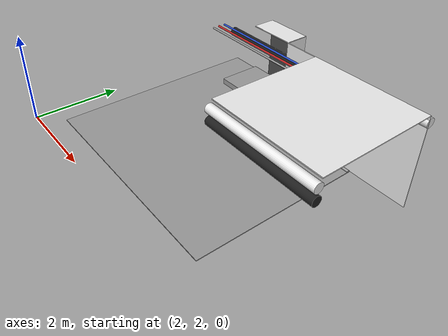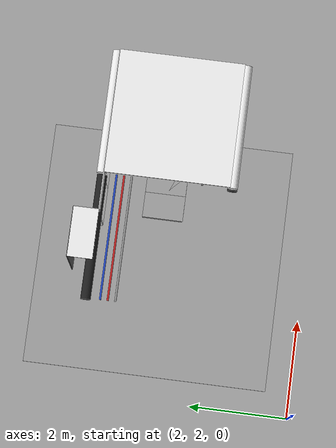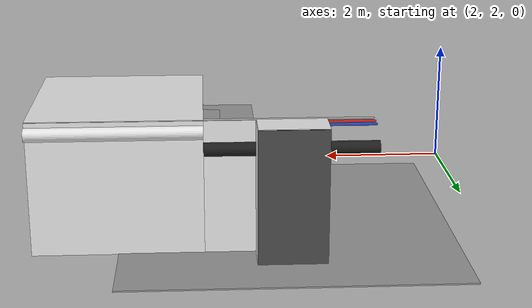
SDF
<sdf version="1.6">
 <world name="default">
  <model name="ceiling_1_2_2_1_2">
   <pose>6.0 5.0 1.7 0.0 0.0 1.57</pose>
   <link name="link_1">
    <visual name="visual">
     <geometry><box><size>0.8 1 0.1</size></box></geometry>
     <material>
      <script><uri>file://media/materials/scripts/gazebo.material</uri><name>Gazebo/Grey</name></script>
     </material>
    </visual>
    <collision name="collision"><geometry><box><size>0.8 1 0.1</size></box></geometry></collision>
   </link>
   <static>1</static>
  </model>
  <model name="black_pipe_right_1_2_2_0_2">
   <static>1</static>
   <pose>5.0 5.0 1.84 0.0 0.0 1.57</pose>
   <link name="link_0">
    <visual name="visual">
     <pose>1.3 0 -0.25 1.57 0 0</pose>
     <geometry><cylinder><radius>0.1</radius><length>2.5</length></cylinder></geometry>
     <material>
      <script><uri>file://media/materials/scripts/gazebo.material</uri><name>Gazebo/Black</name></script>
     </material>
    </visual>
    <collision name="collision">
     <pose>1.3 0 -0.25 1.57 0 0</pose>
     <geometry><cylinder><radius>0.1</radius><length>2.5</length></cylinder></geometry>
    </collision>
   </link>
  </model>
  <model name="grey_pipe_right_1_2_2_0_2">
   <static>1</static>
   <pose>5.0 5.0 1.84 0.0 0.0 1.57</pose>
   <link name="link_0">
    <visual name="visual">
     <pose>0.7 0 0 1.57 0 0</pose>
     <geometry><cylinder><radius>0.02</radius><length>2.5</length></cylinder></geometry>
     <material>
      <script><uri>file://media/materials/scripts/gazebo.material</uri><name>Gazebo/Grey</name></script>
     </material>
    </visual>
    <collision name="collision">
     <pose>0.7 0 0 1.57 0 0</pose>
     <geometry><cylinder><radius>0.02</radius><length>2.5</length></cylinder></geometry>
    </collision>
   </link>
  </model>
  <model name="red_pipe_right_1_2_2_0_2">
   <static>1</static>
   <pose>5.0 5.0 1.84 0.0 0.0 1.57</pose>
   <link name="link_0">
    <visual name="visual">
     <pose>0.85 0 0 1.57 0 0</pose>
     <geometry><cylinder><radius>0.02</radius><length>2.5</length></cylinder></geometry>
     <material>
      <script><uri>file://media/materials/scripts/gazebo.material</uri><name>Gazebo/Red</name></script>
     </material>
    </visual>
    <collision name="collision">
     <pose>0.85 0 0 1.57 0 0</pose>
     <geometry><cylinder><radius>0.02</radius><length>2.5</length></cylinder></geometry>
    </collision>
   </link>
  </model>
  <model name="blue_pipe_right_1_2_2_0_2">
   <static>1</static>
   <pose>5.0 5.0 1.84 0.0 0.0 1.57</pose>
   <link name="link_0">
    <visual name="visual">
     <pose>1 0 0 1.57 0 0</pose>
     <geometry><cylinder><radius>0.02</radius><length>2.5</length></cylinder></geometry>
     <material>
      <script><uri>file://media/materials/scripts/gazebo.material</uri><name>Gazebo/Blue</name></script>
     </material>
    </visual>
    <collision name="collision">
     <pose>1 0 0 1.57 0 0</pose>
     <geometry><cylinder><radius>0.02</radius><length>2.5</length></cylinder></geometry>
    </collision>
   </link>
  </model>
  <model name="wall_bottom_2_2_0_2">
   <static>1</static>
   <pose>5.0 5.0 0.0 0.0 0.0 0.0</pose>
   <link name="link">
    <collision name="collision"><geometry><box><size>5.0 5.0 0.02</size></box></geometry></collision>
    <visual name="visual">
     <material>
      <script><name>Gazebo/Grey</name><uri>file://media/materials/scripts/gazebo.material</uri></script>
     </material>
     <geometry><box><size>5.0 5.0 0.02</size></box></geometry>
    </visual>
   </link>
  </model>
  <model name="wall_front_front_left_2_2_0_2">
   <static>1</static>
   <pose>5.875 6.25 1.0 0.0 0.0 0.0</pose>
   <link name="link">
    <collision name="collision"><geometry><box><size>0.75 0.02 2.0</size></box></geometry></collision>
    <visual name="visual">
     <material>
      <script><name>Gazebo/White</name><uri>file://media/materials/scripts/gazebo.material</uri></script>
     </material>
     <geometry><box><size>0.75 0.02 2.0</size></box></geometry>
    </visual>
   </link>
  </model>
  <model name="wall_front_front_up_2_2_0_2">
   <static>1</static>
   <pose>5.0 6.25 2.0 0.0 0.0 0.0</pose>
   <link name="link">
    <collision name="collision"><geometry><box><size>1.0 0.02 0.001</size></box></geometry></collision>
    <visual name="visual">
     <material>
      <script><name>Gazebo/White</name><uri>file://media/materials/scripts/gazebo.material</uri></script>
     </material>
     <geometry><box><size>1.0 0.02 0.001</size></box></geometry>
    </visual>
   </link>
  </model>
  <model name="wall_front_inside_back_2_2_0_2">
   <static>1</static>
   <pose>5.0 6.75 1.0 0.0 0.0 0.0</pose>
   <link name="link">
    <collision name="collision"><geometry><box><size>1 0.02 2</size></box></geometry></collision>
    <visual name="visual">
     <material>
      <script><name>Gazebo/DarkGrey</name><uri>file://media/materials/scripts/gazebo.material</uri></script>
     </material>
     <geometry><box><size>1 0.02 2</size></box></geometry>
    </visual>
   </link>
  </model>
  <model name="wall_front_inside_right_2_2_0_2">
   <static>1</static>
   <pose>5.5 6.5 1.0 0.0 0.0 1.57</pose>
   <link name="link">
    <collision name="collision"><geometry><box><size>0.5 0.02 2</size></box></geometry></collision>
    <visual name="visual">
     <material>
      <script><name>Gazebo/White</name><uri>file://media/materials/scripts/gazebo.material</uri></script>
     </material>
     <geometry><box><size>0.5 0.02 2</size></box></geometry>
    </visual>
   </link>
  </model>
  <model name="wall_front_inside_top_2_2_0_2">
   <static>1</static>
   <pose>5.0 6.5 2.0 1.57 0.0 0.0</pose>
   <link name="link">
    <collision name="collision"><geometry><box><size>1 0.02 0.5</size></box></geometry></collision>
    <visual name="visual">
     <material>
      <script><name>Gazebo/White</name><uri>file://media/materials/scripts/gazebo.material</uri></script>
     </material>
     <geometry><box><size>1 0.02 0.5</size></box></geometry>
    </visual>
   </link>
  </model>
  <model name="wall_left_3_2_0_1">
   <static>1</static>
   <pose>7.5 6.25 1.0 0.0 0.0 0.0</pose>
   <link name="link">
    <collision name="collision"><geometry><box><size>2.5 0.02 2.0</size></box></geometry></collision>
    <visual name="visual">
     <material>
      <script><name>Gazebo/White</name><uri>file://media/materials/scripts/gazebo.material</uri></script>
     </material>
     <geometry><box><size>2.5 0.02 2.0</size></box></geometry>
    </visual>
   </link>
  </model>
  <model name="wall_top_3_2_0_1">
   <static>1</static>
   <pose>7.5 5.0 2.0 1.57 0.0 -1.57</pose>
   <link name="link">
    <collision name="collision"><geometry><box><size>2.5 0.02 2.5</size></box></geometry></collision>
    <visual name="visual">
     <material>
      <script><name>Gazebo/White</name><uri>file://media/materials/scripts/gazebo.material</uri></script>
     </material>
     <geometry><box><size>2.5 0.02 2.5</size></box></geometry>
    </visual>
   </link>
  </model>
  <model name="ceiling_1_3_2_0_1">
   <pose>7.5 5.0 1.7 0.0 0.0 -1.57</pose>
   <link name="link_1">
    <visual name="visual">
     <geometry><box><size>0.8 1 0.1</size></box></geometry>
     <material>
      <script><uri>file://media/materials/scripts/gazebo.material</uri><name>Gazebo/Grey</name></script>
     </material>
    </visual>
    <collision name="collision"><geometry><box><size>0.8 1 0.1</size></box></geometry></collision>
   </link>
   <static>1</static>
  </model>
  <model name="ceiling_1_3_2_1_1">
   <pose>6.5 5.0 1.7 0.0 0.0 -1.57</pose>
   <link name="link_1">
    <visual name="visual">
     <geometry><box><size>0.8 1 0.1</size></box></geometry>
     <material>
      <script><uri>file://media/materials/scripts/gazebo.material</uri><name>Gazebo/Grey</name></script>
     </material>
    </visual>
    <collision name="collision"><geometry><box><size>0.8 1 0.1</size></box></geometry></collision>
   </link>
   <static>1</static>
  </model>
  <model name="white_pipe_left_3_2_0_1">
   <static>1</static>
   <pose>7.5 5.0 1.84 0.0 0.0 -1.57</pose>
   <link name="link_0">
    <visual name="visual">
     <pose>-1.3 0 0 1.57 0 0</pose>
     <geometry><cylinder><radius>0.1</radius><length>2.5</length></cylinder></geometry>
     <material>
      <script><uri>file://media/materials/scripts/gazebo.material</uri><name>Gazebo/White</name></script>
     </material>
    </visual>
    <collision name="collision">
     <pose>-1.3 0 0 1.57 0 0</pose>
     <geometry><cylinder><radius>0.1</radius><length>2.5</length></cylinder></geometry>
    </collision>
   </link>
  </model>
  <model name="white_pipe_right_3_2_0_1">
   <static>1</static>
   <pose>7.5 5.0 1.84 0.0 0.0 -1.57</pose>
   <link name="link_0">
    <visual name="visual">
     <pose>1.3 0 0 1.57 0 0</pose>
     <geometry><cylinder><radius>0.1</radius><length>2.5</length></cylinder></geometry>
     <material>
      <script><uri>file://media/materials/scripts/gazebo.material</uri><name>Gazebo/White</name></script>
     </material>
    </visual>
    <collision name="collision">
     <pose>1.3 0 0 1.57 0 0</pose>
     <geometry><cylinder><radius>0.1</radius><length>2.5</length></cylinder></geometry>
    </collision>
   </link>
  </model>
  <model name="black_pipe_right_3_2_0_1">
   <static>1</static>
   <pose>7.5 5.0 1.84 0.0 0.0 -1.57</pose>
   <link name="link_0">
    <visual name="visual">
     <pose>1.3 0 -0.25 1.57 0 0</pose>
     <geometry><cylinder><radius>0.1</radius><length>2.5</length></cylinder></geometry>
     <material>
      <script><uri>file://media/materials/scripts/gazebo.material</uri><name>Gazebo/Black</name></script>
     </material>
    </visual>
    <collision name="collision">
     <pose>1.3 0 -0.25 1.57 0 0</pose>
     <geometry><cylinder><radius>0.1</radius><length>2.5</length></cylinder></geometry>
    </collision>
   </link>
  </model>
  <model name="grey_pipe_right_3_2_0_1">
   <static>1</static>
   <pose>7.5 5.0 1.84 0.0 0.0 -1.57</pose>
   <link name="link_0">
    <visual name="visual">
     <pose>0.7 0 0 1.57 0 0</pose>
     <geometry><cylinder><radius>0.02</radius><length>2.5</length></cylinder></geometry>
     <material>
      <script><uri>file://media/materials/scripts/gazebo.material</uri><name>Gazebo/Grey</name></script>
     </material>
    </visual>
    <collision name="collision">
     <pose>0.7 0 0 1.57 0 0</pose>
     <geometry><cylinder><radius>0.02</radius><length>2.5</length></cylinder></geometry>
    </collision>
   </link>
  </model>
 </world>
</sdf>
